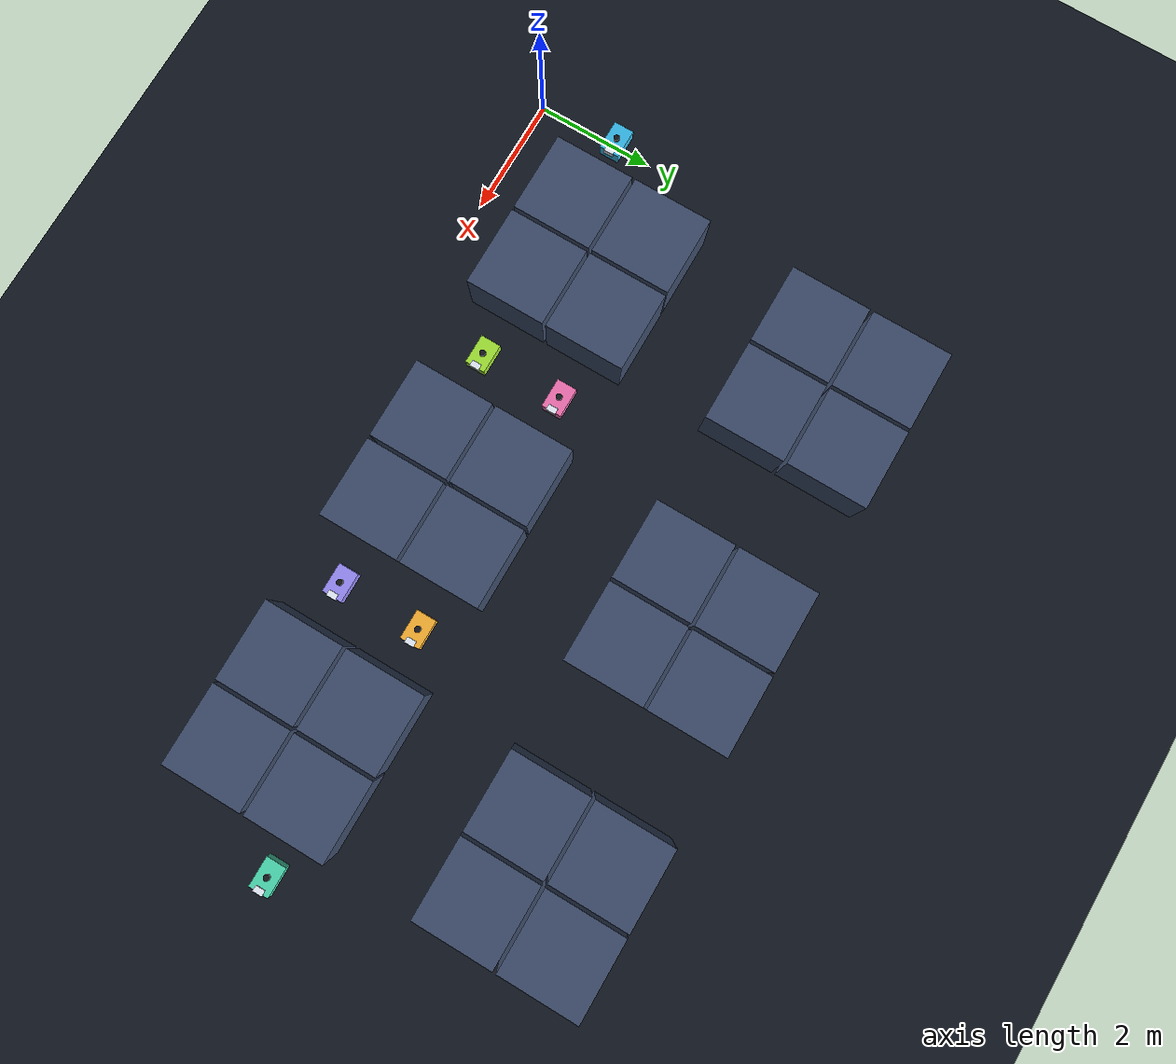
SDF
<?xml version="1.0" ?>
<sdf version="1.8">
  <world name="warehouse_demo">
    <physics name="1ms" type="ignored"><max_step_size>0.001</max_step_size><real_time_factor>1.0</real_time_factor></physics>
    <plugin filename="gz-sim-physics-system" name="gz::sim::systems::Physics"/>
    <plugin filename="gz-sim-user-commands-system" name="gz::sim::systems::UserCommands"/>
    <plugin filename="gz-sim-scene-broadcaster-system" name="gz::sim::systems::SceneBroadcaster"/>
    <plugin filename="gz-sim-sensors-system" name="gz::sim::systems::Sensors"><render_engine>ogre2</render_engine><background_color>0.043 0.055 0.078 1</background_color></plugin>
    <scene><ambient>0.5 0.5 0.55 1</ambient><background>0.043 0.055 0.078 1</background><grid>false</grid><shadows>true</shadows></scene>
    <light type="directional" name="sun"><cast_shadows>true</cast_shadows><pose>0 0 10 0 0 0</pose><diffuse>0.9 0.9 0.9 1</diffuse><specular>0.25 0.25 0.25 1</specular><direction>-0.4 0.3 -0.9</direction></light>
    <model name="ground_plane"><static>true</static><link name="link">
      <collision name="c"><geometry><plane><normal>0 0 1</normal><size>60 60</size></plane></geometry></collision>
      <visual name="v"><geometry><plane><normal>0 0 1</normal><size>60 60</size></plane></geometry><material><ambient>0.05 0.07 0.10 1</ambient><diffuse>0.07 0.09 0.13 1</diffuse></material></visual></link></model>

    <model name="shelf_0"><static>true</static><pose>1.400 1.400 0.450 0 0 0</pose><link name="link"><collision name="c"><geometry><box><size>1.400 1.400 0.900</size></box></geometry></collision><visual name="v"><geometry><box><size>1.344 1.344 0.900</size></box></geometry><material><ambient>0.20 0.25 0.34 1</ambient><diffuse>0.24 0.30 0.42 1</diffuse></material></visual></link></model>
    <model name="shelf_1"><static>true</static><pose>1.400 2.800 0.450 0 0 0</pose><link name="link"><collision name="c"><geometry><box><size>1.400 1.400 0.900</size></box></geometry></collision><visual name="v"><geometry><box><size>1.344 1.344 0.900</size></box></geometry><material><ambient>0.20 0.25 0.34 1</ambient><diffuse>0.24 0.30 0.42 1</diffuse></material></visual></link></model>
    <model name="shelf_2"><static>true</static><pose>1.400 5.600 0.450 0 0 0</pose><link name="link"><collision name="c"><geometry><box><size>1.400 1.400 0.900</size></box></geometry></collision><visual name="v"><geometry><box><size>1.344 1.344 0.900</size></box></geometry><material><ambient>0.20 0.25 0.34 1</ambient><diffuse>0.24 0.30 0.42 1</diffuse></material></visual></link></model>
    <model name="shelf_3"><static>true</static><pose>1.400 7.000 0.450 0 0 0</pose><link name="link"><collision name="c"><geometry><box><size>1.400 1.400 0.900</size></box></geometry></collision><visual name="v"><geometry><box><size>1.344 1.344 0.900</size></box></geometry><material><ambient>0.20 0.25 0.34 1</ambient><diffuse>0.24 0.30 0.42 1</diffuse></material></visual></link></model>
    <model name="shelf_4"><static>true</static><pose>2.800 1.400 0.450 0 0 0</pose><link name="link"><collision name="c"><geometry><box><size>1.400 1.400 0.900</size></box></geometry></collision><visual name="v"><geometry><box><size>1.344 1.344 0.900</size></box></geometry><material><ambient>0.20 0.25 0.34 1</ambient><diffuse>0.24 0.30 0.42 1</diffuse></material></visual></link></model>
    <model name="shelf_5"><static>true</static><pose>2.800 2.800 0.450 0 0 0</pose><link name="link"><collision name="c"><geometry><box><size>1.400 1.400 0.900</size></box></geometry></collision><visual name="v"><geometry><box><size>1.344 1.344 0.900</size></box></geometry><material><ambient>0.20 0.25 0.34 1</ambient><diffuse>0.24 0.30 0.42 1</diffuse></material></visual></link></model>
    <model name="shelf_6"><static>true</static><pose>2.800 5.600 0.450 0 0 0</pose><link name="link"><collision name="c"><geometry><box><size>1.400 1.400 0.900</size></box></geometry></collision><visual name="v"><geometry><box><size>1.344 1.344 0.900</size></box></geometry><material><ambient>0.20 0.25 0.34 1</ambient><diffuse>0.24 0.30 0.42 1</diffuse></material></visual></link></model>
    <model name="shelf_7"><static>true</static><pose>2.800 7.000 0.450 0 0 0</pose><link name="link"><collision name="c"><geometry><box><size>1.400 1.400 0.900</size></box></geometry></collision><visual name="v"><geometry><box><size>1.344 1.344 0.900</size></box></geometry><material><ambient>0.20 0.25 0.34 1</ambient><diffuse>0.24 0.30 0.42 1</diffuse></material></visual></link></model>
    <model name="shelf_8"><static>true</static><pose>5.600 1.400 0.450 0 0 0</pose><link name="link"><collision name="c"><geometry><box><size>1.400 1.400 0.900</size></box></geometry></collision><visual name="v"><geometry><box><size>1.344 1.344 0.900</size></box></geometry><material><ambient>0.20 0.25 0.34 1</ambient><diffuse>0.24 0.30 0.42 1</diffuse></material></visual></link></model>
    <model name="shelf_9"><static>true</static><pose>5.600 2.800 0.450 0 0 0</pose><link name="link"><collision name="c"><geometry><box><size>1.400 1.400 0.900</size></box></geometry></collision><visual name="v"><geometry><box><size>1.344 1.344 0.900</size></box></geometry><material><ambient>0.20 0.25 0.34 1</ambient><diffuse>0.24 0.30 0.42 1</diffuse></material></visual></link></model>
    <model name="shelf_10"><static>true</static><pose>5.600 5.600 0.450 0 0 0</pose><link name="link"><collision name="c"><geometry><box><size>1.400 1.400 0.900</size></box></geometry></collision><visual name="v"><geometry><box><size>1.344 1.344 0.900</size></box></geometry><material><ambient>0.20 0.25 0.34 1</ambient><diffuse>0.24 0.30 0.42 1</diffuse></material></visual></link></model>
    <model name="shelf_11"><static>true</static><pose>5.600 7.000 0.450 0 0 0</pose><link name="link"><collision name="c"><geometry><box><size>1.400 1.400 0.900</size></box></geometry></collision><visual name="v"><geometry><box><size>1.344 1.344 0.900</size></box></geometry><material><ambient>0.20 0.25 0.34 1</ambient><diffuse>0.24 0.30 0.42 1</diffuse></material></visual></link></model>
    <model name="shelf_12"><static>true</static><pose>7.000 1.400 0.450 0 0 0</pose><link name="link"><collision name="c"><geometry><box><size>1.400 1.400 0.900</size></box></geometry></collision><visual name="v"><geometry><box><size>1.344 1.344 0.900</size></box></geometry><material><ambient>0.20 0.25 0.34 1</ambient><diffuse>0.24 0.30 0.42 1</diffuse></material></visual></link></model>
    <model name="shelf_13"><static>true</static><pose>7.000 2.800 0.450 0 0 0</pose><link name="link"><collision name="c"><geometry><box><size>1.400 1.400 0.900</size></box></geometry></collision><visual name="v"><geometry><box><size>1.344 1.344 0.900</size></box></geometry><material><ambient>0.20 0.25 0.34 1</ambient><diffuse>0.24 0.30 0.42 1</diffuse></material></visual></link></model>
    <model name="shelf_14"><static>true</static><pose>7.000 5.600 0.450 0 0 0</pose><link name="link"><collision name="c"><geometry><box><size>1.400 1.400 0.900</size></box></geometry></collision><visual name="v"><geometry><box><size>1.344 1.344 0.900</size></box></geometry><material><ambient>0.20 0.25 0.34 1</ambient><diffuse>0.24 0.30 0.42 1</diffuse></material></visual></link></model>
    <model name="shelf_15"><static>true</static><pose>7.000 7.000 0.450 0 0 0</pose><link name="link"><collision name="c"><geometry><box><size>1.400 1.400 0.900</size></box></geometry></collision><visual name="v"><geometry><box><size>1.344 1.344 0.900</size></box></geometry><material><ambient>0.20 0.25 0.34 1</ambient><diffuse>0.24 0.30 0.42 1</diffuse></material></visual></link></model>
    <model name="shelf_16"><static>true</static><pose>9.800 1.400 0.450 0 0 0</pose><link name="link"><collision name="c"><geometry><box><size>1.400 1.400 0.900</size></box></geometry></collision><visual name="v"><geometry><box><size>1.344 1.344 0.900</size></box></geometry><material><ambient>0.20 0.25 0.34 1</ambient><diffuse>0.24 0.30 0.42 1</diffuse></material></visual></link></model>
    <model name="shelf_17"><static>true</static><pose>9.800 2.800 0.450 0 0 0</pose><link name="link"><collision name="c"><geometry><box><size>1.400 1.400 0.900</size></box></geometry></collision><visual name="v"><geometry><box><size>1.344 1.344 0.900</size></box></geometry><material><ambient>0.20 0.25 0.34 1</ambient><diffuse>0.24 0.30 0.42 1</diffuse></material></visual></link></model>
    <model name="shelf_18"><static>true</static><pose>9.800 5.600 0.450 0 0 0</pose><link name="link"><collision name="c"><geometry><box><size>1.400 1.400 0.900</size></box></geometry></collision><visual name="v"><geometry><box><size>1.344 1.344 0.900</size></box></geometry><material><ambient>0.20 0.25 0.34 1</ambient><diffuse>0.24 0.30 0.42 1</diffuse></material></visual></link></model>
    <model name="shelf_19"><static>true</static><pose>9.800 7.000 0.450 0 0 0</pose><link name="link"><collision name="c"><geometry><box><size>1.400 1.400 0.900</size></box></geometry></collision><visual name="v"><geometry><box><size>1.344 1.344 0.900</size></box></geometry><material><ambient>0.20 0.25 0.34 1</ambient><diffuse>0.24 0.30 0.42 1</diffuse></material></visual></link></model>
    <model name="shelf_20"><static>true</static><pose>11.200 1.400 0.450 0 0 0</pose><link name="link"><collision name="c"><geometry><box><size>1.400 1.400 0.900</size></box></geometry></collision><visual name="v"><geometry><box><size>1.344 1.344 0.900</size></box></geometry><material><ambient>0.20 0.25 0.34 1</ambient><diffuse>0.24 0.30 0.42 1</diffuse></material></visual></link></model>
    <model name="shelf_21"><static>true</static><pose>11.200 2.800 0.450 0 0 0</pose><link name="link"><collision name="c"><geometry><box><size>1.400 1.400 0.900</size></box></geometry></collision><visual name="v"><geometry><box><size>1.344 1.344 0.900</size></box></geometry><material><ambient>0.20 0.25 0.34 1</ambient><diffuse>0.24 0.30 0.42 1</diffuse></material></visual></link></model>
    <model name="shelf_22"><static>true</static><pose>11.200 5.600 0.450 0 0 0</pose><link name="link"><collision name="c"><geometry><box><size>1.400 1.400 0.900</size></box></geometry></collision><visual name="v"><geometry><box><size>1.344 1.344 0.900</size></box></geometry><material><ambient>0.20 0.25 0.34 1</ambient><diffuse>0.24 0.30 0.42 1</diffuse></material></visual></link></model>
    <model name="shelf_23"><static>true</static><pose>11.200 7.000 0.450 0 0 0</pose><link name="link"><collision name="c"><geometry><box><size>1.400 1.400 0.900</size></box></geometry></collision><visual name="v"><geometry><box><size>1.344 1.344 0.900</size></box></geometry><material><ambient>0.20 0.25 0.34 1</ambient><diffuse>0.24 0.30 0.42 1</diffuse></material></visual></link></model>

    <model name="a0">
      <pose>0.000 1.400 0.1 0 0 0</pose>
      <link name="base">
        <inertial><mass>1.5</mass><inertia><ixx>0.03</ixx><iyy>0.03</iyy><izz>0.05</izz><ixy>0</ixy><ixz>0</ixz><iyz>0</iyz></inertia></inertial>
        <collision name="c"><pose>0 0 0.1 0 0 0</pose><geometry><box><size>0.5 0.34 0.2</size></box></geometry></collision>
        <visual name="v"><pose>0 0 0.1 0 0 0</pose><geometry><box><size>0.5 0.34 0.2</size></box></geometry>
          <material><ambient>0.132 0.444 0.558 1</ambient><diffuse>0.220 0.740 0.930 1</diffuse><specular>0.3 0.3 0.3 1</specular></material></visual>
        <visual name="nose"><pose>0.22 0 0.17 0 0 0</pose><geometry><box><size>0.1 0.16 0.09</size></box></geometry>
          <material><ambient>0.92 0.95 1 1</ambient><diffuse>0.92 0.95 1 1</diffuse></material></visual>
        <visual name="puck"><pose>0 0 0.22 0 0 0</pose><geometry><cylinder><radius>0.05</radius><length>0.06</length></cylinder></geometry>
          <material><ambient>0.05 0.06 0.08 1</ambient><diffuse>0.08 0.09 0.11 1</diffuse></material></visual>
        <sensor name="lidar" type="gpu_lidar"><pose>0 0 0.25 0 0 0</pose><update_rate>15</update_rate><always_on>1</always_on><topic>/model/a0/scan</topic>
          <lidar><scan><horizontal><samples>120</samples><resolution>1</resolution><min_angle>-3.14159</min_angle><max_angle>3.14159</max_angle></horizontal></scan>
            <range><min>0.12</min><max>6.0</max><resolution>0.01</resolution></range></lidar></sensor>
      </link>
      <plugin filename="gz-sim-velocity-control-system" name="gz::sim::systems::VelocityControl"><topic>/model/a0/cmd_vel</topic></plugin>
      <plugin filename="gz-sim-pose-publisher-system" name="gz::sim::systems::PosePublisher">
        <publish_link_pose>false</publish_link_pose><publish_model_pose>true</publish_model_pose>
        <use_pose_vector_msg>false</use_pose_vector_msg><static_publisher>false</static_publisher><update_frequency>30</update_frequency></plugin>
    </model>
    <model name="a1">
      <pose>4.200 2.800 0.1 0 0 0</pose>
      <link name="base">
        <inertial><mass>1.5</mass><inertia><ixx>0.03</ixx><iyy>0.03</iyy><izz>0.05</izz><ixy>0</ixy><ixz>0</ixz><iyz>0</iyz></inertia></inertial>
        <collision name="c"><pose>0 0 0.1 0 0 0</pose><geometry><box><size>0.5 0.34 0.2</size></box></geometry></collision>
        <visual name="v"><pose>0 0 0.1 0 0 0</pose><geometry><box><size>0.5 0.34 0.2</size></box></geometry>
          <material><ambient>0.576 0.270 0.426 1</ambient><diffuse>0.960 0.450 0.710 1</diffuse><specular>0.3 0.3 0.3 1</specular></material></visual>
        <visual name="nose"><pose>0.22 0 0.17 0 0 0</pose><geometry><box><size>0.1 0.16 0.09</size></box></geometry>
          <material><ambient>0.92 0.95 1 1</ambient><diffuse>0.92 0.95 1 1</diffuse></material></visual>
        <visual name="puck"><pose>0 0 0.22 0 0 0</pose><geometry><cylinder><radius>0.05</radius><length>0.06</length></cylinder></geometry>
          <material><ambient>0.05 0.06 0.08 1</ambient><diffuse>0.08 0.09 0.11 1</diffuse></material></visual>
        <sensor name="lidar" type="gpu_lidar"><pose>0 0 0.25 0 0 0</pose><update_rate>15</update_rate><always_on>1</always_on><topic>/model/a1/scan</topic>
          <lidar><scan><horizontal><samples>120</samples><resolution>1</resolution><min_angle>-3.14159</min_angle><max_angle>3.14159</max_angle></horizontal></scan>
            <range><min>0.12</min><max>6.0</max><resolution>0.01</resolution></range></lidar></sensor>
      </link>
      <plugin filename="gz-sim-velocity-control-system" name="gz::sim::systems::VelocityControl"><topic>/model/a1/cmd_vel</topic></plugin>
      <plugin filename="gz-sim-pose-publisher-system" name="gz::sim::systems::PosePublisher">
        <publish_link_pose>false</publish_link_pose><publish_model_pose>true</publish_model_pose>
        <use_pose_vector_msg>false</use_pose_vector_msg><static_publisher>false</static_publisher><update_frequency>30</update_frequency></plugin>
    </model>
    <model name="a2">
      <pose>4.200 1.400 0.1 0 0 0</pose>
      <link name="base">
        <inertial><mass>1.5</mass><inertia><ixx>0.03</ixx><iyy>0.03</iyy><izz>0.05</izz><ixy>0</ixy><ixz>0</ixz><iyz>0</iyz></inertia></inertial>
        <collision name="c"><pose>0 0 0.1 0 0 0</pose><geometry><box><size>0.5 0.34 0.2</size></box></geometry></collision>
        <visual name="v"><pose>0 0 0.1 0 0 0</pose><geometry><box><size>0.5 0.34 0.2</size></box></geometry>
          <material><ambient>0.384 0.540 0.126 1</ambient><diffuse>0.640 0.900 0.210 1</diffuse><specular>0.3 0.3 0.3 1</specular></material></visual>
        <visual name="nose"><pose>0.22 0 0.17 0 0 0</pose><geometry><box><size>0.1 0.16 0.09</size></box></geometry>
          <material><ambient>0.92 0.95 1 1</ambient><diffuse>0.92 0.95 1 1</diffuse></material></visual>
        <visual name="puck"><pose>0 0 0.22 0 0 0</pose><geometry><cylinder><radius>0.05</radius><length>0.06</length></cylinder></geometry>
          <material><ambient>0.05 0.06 0.08 1</ambient><diffuse>0.08 0.09 0.11 1</diffuse></material></visual>
        <sensor name="lidar" type="gpu_lidar"><pose>0 0 0.25 0 0 0</pose><update_rate>15</update_rate><always_on>1</always_on><topic>/model/a2/scan</topic>
          <lidar><scan><horizontal><samples>120</samples><resolution>1</resolution><min_angle>-3.14159</min_angle><max_angle>3.14159</max_angle></horizontal></scan>
            <range><min>0.12</min><max>6.0</max><resolution>0.01</resolution></range></lidar></sensor>
      </link>
      <plugin filename="gz-sim-velocity-control-system" name="gz::sim::systems::VelocityControl"><topic>/model/a2/cmd_vel</topic></plugin>
      <plugin filename="gz-sim-pose-publisher-system" name="gz::sim::systems::PosePublisher">
        <publish_link_pose>false</publish_link_pose><publish_model_pose>true</publish_model_pose>
        <use_pose_vector_msg>false</use_pose_vector_msg><static_publisher>false</static_publisher><update_frequency>30</update_frequency></plugin>
    </model>
    <model name="a3">
      <pose>8.400 2.800 0.1 0 0 0</pose>
      <link name="base">
        <inertial><mass>1.5</mass><inertia><ixx>0.03</ixx><iyy>0.03</iyy><izz>0.05</izz><ixy>0</ixy><ixz>0</ixz><iyz>0</iyz></inertia></inertial>
        <collision name="c"><pose>0 0 0.1 0 0 0</pose><geometry><box><size>0.5 0.34 0.2</size></box></geometry></collision>
        <visual name="v"><pose>0 0 0.1 0 0 0</pose><geometry><box><size>0.5 0.34 0.2</size></box></geometry>
          <material><ambient>0.588 0.420 0.120 1</ambient><diffuse>0.980 0.700 0.200 1</diffuse><specular>0.3 0.3 0.3 1</specular></material></visual>
        <visual name="nose"><pose>0.22 0 0.17 0 0 0</pose><geometry><box><size>0.1 0.16 0.09</size></box></geometry>
          <material><ambient>0.92 0.95 1 1</ambient><diffuse>0.92 0.95 1 1</diffuse></material></visual>
        <visual name="puck"><pose>0 0 0.22 0 0 0</pose><geometry><cylinder><radius>0.05</radius><length>0.06</length></cylinder></geometry>
          <material><ambient>0.05 0.06 0.08 1</ambient><diffuse>0.08 0.09 0.11 1</diffuse></material></visual>
        <sensor name="lidar" type="gpu_lidar"><pose>0 0 0.25 0 0 0</pose><update_rate>15</update_rate><always_on>1</always_on><topic>/model/a3/scan</topic>
          <lidar><scan><horizontal><samples>120</samples><resolution>1</resolution><min_angle>-3.14159</min_angle><max_angle>3.14159</max_angle></horizontal></scan>
            <range><min>0.12</min><max>6.0</max><resolution>0.01</resolution></range></lidar></sensor>
      </link>
      <plugin filename="gz-sim-velocity-control-system" name="gz::sim::systems::VelocityControl"><topic>/model/a3/cmd_vel</topic></plugin>
      <plugin filename="gz-sim-pose-publisher-system" name="gz::sim::systems::PosePublisher">
        <publish_link_pose>false</publish_link_pose><publish_model_pose>true</publish_model_pose>
        <use_pose_vector_msg>false</use_pose_vector_msg><static_publisher>false</static_publisher><update_frequency>30</update_frequency></plugin>
    </model>
    <model name="a4">
      <pose>8.400 1.400 0.1 0 0 0</pose>
      <link name="base">
        <inertial><mass>1.5</mass><inertia><ixx>0.03</ixx><iyy>0.03</iyy><izz>0.05</izz><ixy>0</ixy><ixz>0</ixz><iyz>0</iyz></inertia></inertial>
        <collision name="c"><pose>0 0 0.1 0 0 0</pose><geometry><box><size>0.5 0.34 0.2</size></box></geometry></collision>
        <visual name="v"><pose>0 0 0.1 0 0 0</pose><geometry><box><size>0.5 0.34 0.2</size></box></geometry>
          <material><ambient>0.360 0.330 0.588 1</ambient><diffuse>0.600 0.550 0.980 1</diffuse><specular>0.3 0.3 0.3 1</specular></material></visual>
        <visual name="nose"><pose>0.22 0 0.17 0 0 0</pose><geometry><box><size>0.1 0.16 0.09</size></box></geometry>
          <material><ambient>0.92 0.95 1 1</ambient><diffuse>0.92 0.95 1 1</diffuse></material></visual>
        <visual name="puck"><pose>0 0 0.22 0 0 0</pose><geometry><cylinder><radius>0.05</radius><length>0.06</length></cylinder></geometry>
          <material><ambient>0.05 0.06 0.08 1</ambient><diffuse>0.08 0.09 0.11 1</diffuse></material></visual>
        <sensor name="lidar" type="gpu_lidar"><pose>0 0 0.25 0 0 0</pose><update_rate>15</update_rate><always_on>1</always_on><topic>/model/a4/scan</topic>
          <lidar><scan><horizontal><samples>120</samples><resolution>1</resolution><min_angle>-3.14159</min_angle><max_angle>3.14159</max_angle></horizontal></scan>
            <range><min>0.12</min><max>6.0</max><resolution>0.01</resolution></range></lidar></sensor>
      </link>
      <plugin filename="gz-sim-velocity-control-system" name="gz::sim::systems::VelocityControl"><topic>/model/a4/cmd_vel</topic></plugin>
      <plugin filename="gz-sim-pose-publisher-system" name="gz::sim::systems::PosePublisher">
        <publish_link_pose>false</publish_link_pose><publish_model_pose>true</publish_model_pose>
        <use_pose_vector_msg>false</use_pose_vector_msg><static_publisher>false</static_publisher><update_frequency>30</update_frequency></plugin>
    </model>
    <model name="a5">
      <pose>12.600 2.800 0.1 0 0 0</pose>
      <link name="base">
        <inertial><mass>1.5</mass><inertia><ixx>0.03</ixx><iyy>0.03</iyy><izz>0.05</izz><ixy>0</ixy><ixz>0</ixz><iyz>0</iyz></inertia></inertial>
        <collision name="c"><pose>0 0 0.1 0 0 0</pose><geometry><box><size>0.5 0.34 0.2</size></box></geometry></collision>
        <visual name="v"><pose>0 0 0.1 0 0 0</pose><geometry><box><size>0.5 0.34 0.2</size></box></geometry>
          <material><ambient>0.180 0.516 0.420 1</ambient><diffuse>0.300 0.860 0.700 1</diffuse><specular>0.3 0.3 0.3 1</specular></material></visual>
        <visual name="nose"><pose>0.22 0 0.17 0 0 0</pose><geometry><box><size>0.1 0.16 0.09</size></box></geometry>
          <material><ambient>0.92 0.95 1 1</ambient><diffuse>0.92 0.95 1 1</diffuse></material></visual>
        <visual name="puck"><pose>0 0 0.22 0 0 0</pose><geometry><cylinder><radius>0.05</radius><length>0.06</length></cylinder></geometry>
          <material><ambient>0.05 0.06 0.08 1</ambient><diffuse>0.08 0.09 0.11 1</diffuse></material></visual>
        <sensor name="lidar" type="gpu_lidar"><pose>0 0 0.25 0 0 0</pose><update_rate>15</update_rate><always_on>1</always_on><topic>/model/a5/scan</topic>
          <lidar><scan><horizontal><samples>120</samples><resolution>1</resolution><min_angle>-3.14159</min_angle><max_angle>3.14159</max_angle></horizontal></scan>
            <range><min>0.12</min><max>6.0</max><resolution>0.01</resolution></range></lidar></sensor>
      </link>
      <plugin filename="gz-sim-velocity-control-system" name="gz::sim::systems::VelocityControl"><topic>/model/a5/cmd_vel</topic></plugin>
      <plugin filename="gz-sim-pose-publisher-system" name="gz::sim::systems::PosePublisher">
        <publish_link_pose>false</publish_link_pose><publish_model_pose>true</publish_model_pose>
        <use_pose_vector_msg>false</use_pose_vector_msg><static_publisher>false</static_publisher><update_frequency>30</update_frequency></plugin>
    </model>

    <model name="rec_camera"><static>true</static><pose>7.000 -1.700 12.500 0 1.02 1.5707</pose>
      <link name="link"><sensor name="rec" type="camera">
        <camera><horizontal_fov>0.95</horizontal_fov><image><width>1000</width><height>660</height></image><clip><near>0.1</near><far>120</far></clip></camera>
        <always_on>1</always_on><update_rate>30</update_rate><topic>rec_camera</topic></sensor></link></model>
  </world>
</sdf>
